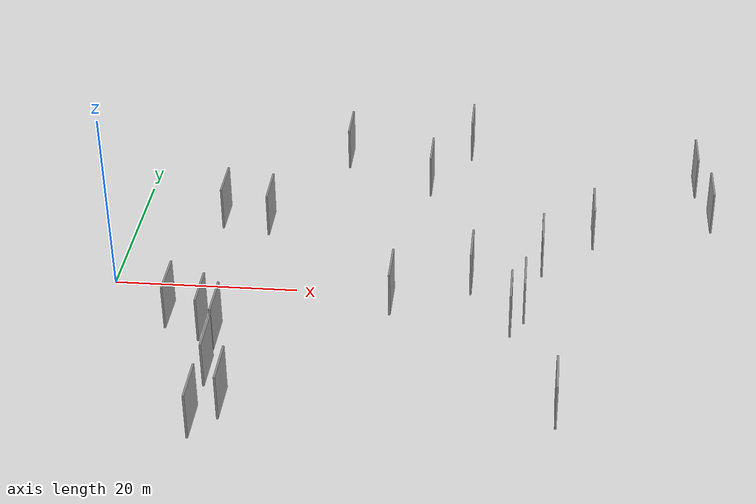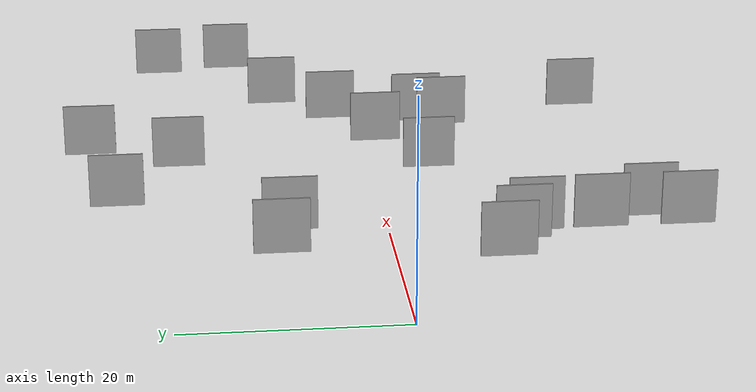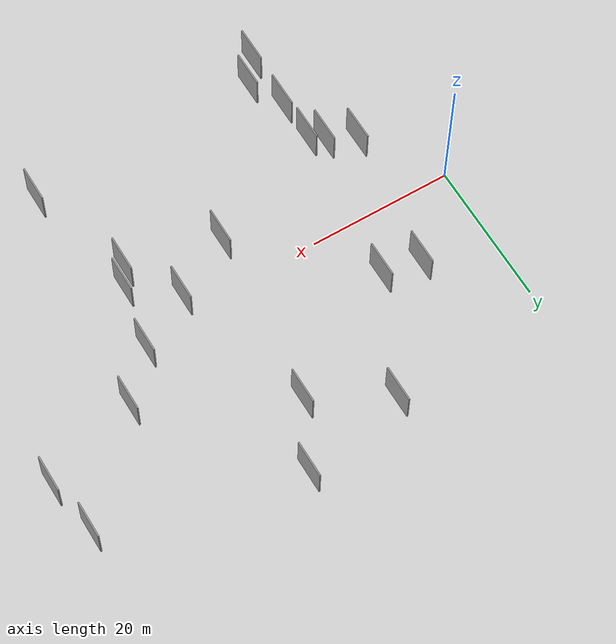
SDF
<sdf version="1.6">
 <world name="default">
  <scene>
   <sky><clouds><speed>12</speed></clouds></sky>
   <ambient>0.4 0.4 0.4 1</ambient>
   <background>0.7 0.7 0.7 1</background>
   <shadows>1</shadows>
  </scene>
  <gravity>0 0 -9.8066</gravity>
  <magnetic_field>6e-06 2.3e-05 -4.2e-05</magnetic_field>
  <physics default="0" name="default_physics" type="ode">
   <ode>
    <solver>
     <type>quick</type>
     <iters>10</iters>
     <sor>1.0</sor>
     <use_dynamic_moi_rescaling>0</use_dynamic_moi_rescaling>
    </solver>
    <constraints>
     <cfm>0</cfm>
     <erp>0.2</erp>
     <contact_max_correcting_vel>100</contact_max_correcting_vel>
     <contact_surface_layer>0.001</contact_surface_layer>
    </constraints>
   </ode>
   <max_step_size>0.004</max_step_size>
   <real_time_factor>1</real_time_factor>
   <real_time_update_rate>250</real_time_update_rate>
  </physics>
  <light name="sun" type="directional">
   <pose>0 0 10 0 0 0</pose>
   <diffuse>0.8 0.8 0.8 1</diffuse>
   <specular>0.2 0.2 0.2 1</specular>
   <attenuation>
    <range>1000</range>
    <constant>0.9</constant>
    <linear>0.01</linear>
    <quadratic>0.001</quadratic>
   </attenuation>
   <direction>-0.5 0.1 -0.9</direction>
  </light>
  <model name="grey_wall_1">
   <static>1</static>
   <pose>30.8269 -4.9778 2.5 0.000000 0.000000 1.570796</pose>
   <link name="link">
    <pose>0 0 2.50 0 0 0</pose>
    <collision name="collision"><geometry><box><size>5.00 0.2 5.00</size></box></geometry></collision>
    <visual name="visual">
     <cast_shadows>0</cast_shadows>
     <geometry><box><size>5.00 0.2 5.00</size></box></geometry>
     <material>
      <script>
       <uri>model://grey_wall/materials/scripts</uri>
       <uri>model://grey_wall/materials/textures</uri>
       <name>vrc/grey_wall</name>
      </script>
     </material>
    </visual>
   </link>
  </model>
  <model name="grey_wall_2">
   <static>1</static>
   <pose>11.8589 -10.9925 2.5 0.000000 0.000000 1.570796</pose>
   <link name="link">
    <pose>0 0 2.50 0 0 0</pose>
    <collision name="collision"><geometry><box><size>5.00 0.2 5.00</size></box></geometry></collision>
    <visual name="visual">
     <cast_shadows>0</cast_shadows>
     <geometry><box><size>5.00 0.2 5.00</size></box></geometry>
     <material>
      <script>
       <uri>model://grey_wall/materials/scripts</uri>
       <uri>model://grey_wall/materials/textures</uri>
       <name>vrc/grey_wall</name>
      </script>
     </material>
    </visual>
   </link>
  </model>
  <model name="grey_wall_3">
   <static>1</static>
   <pose>48.2119 -22.3808 2.5 0.000000 0.000000 1.570796</pose>
   <link name="link">
    <pose>0 0 2.50 0 0 0</pose>
    <collision name="collision"><geometry><box><size>5.00 0.2 5.00</size></box></geometry></collision>
    <visual name="visual">
     <cast_shadows>0</cast_shadows>
     <geometry><box><size>5.00 0.2 5.00</size></box></geometry>
     <material>
      <script>
       <uri>model://grey_wall/materials/scripts</uri>
       <uri>model://grey_wall/materials/textures</uri>
       <name>vrc/grey_wall</name>
      </script>
     </material>
    </visual>
   </link>
  </model>
  <model name="grey_wall_4">
   <static>1</static>
   <pose>63.8481 21.2241 2.5 0.000000 0.000000 1.570796</pose>
   <link name="link">
    <pose>0 0 2.50 0 0 0</pose>
    <collision name="collision"><geometry><box><size>5.00 0.2 5.00</size></box></geometry></collision>
    <visual name="visual">
     <cast_shadows>0</cast_shadows>
     <geometry><box><size>5.00 0.2 5.00</size></box></geometry>
     <material>
      <script>
       <uri>model://grey_wall/materials/scripts</uri>
       <uri>model://grey_wall/materials/textures</uri>
       <name>vrc/grey_wall</name>
      </script>
     </material>
    </visual>
   </link>
  </model>
  <model name="grey_wall_5">
   <static>1</static>
   <pose>10.6668 10.4937 2.5 0.000000 0.000000 1.570796</pose>
   <link name="link">
    <pose>0 0 2.50 0 0 0</pose>
    <collision name="collision"><geometry><box><size>5.00 0.2 5.00</size></box></geometry></collision>
    <visual name="visual">
     <cast_shadows>0</cast_shadows>
     <geometry><box><size>5.00 0.2 5.00</size></box></geometry>
     <material>
      <script>
       <uri>model://grey_wall/materials/scripts</uri>
       <uri>model://grey_wall/materials/textures</uri>
       <name>vrc/grey_wall</name>
      </script>
     </material>
    </visual>
   </link>
  </model>
  <model name="grey_wall_6">
   <static>1</static>
   <pose>33.3438 19.2492 2.5 0.000000 0.000000 1.570796</pose>
   <link name="link">
    <pose>0 0 2.50 0 0 0</pose>
    <collision name="collision"><geometry><box><size>5.00 0.2 5.00</size></box></geometry></collision>
    <visual name="visual">
     <cast_shadows>0</cast_shadows>
     <geometry><box><size>5.00 0.2 5.00</size></box></geometry>
     <material>
      <script>
       <uri>model://grey_wall/materials/scripts</uri>
       <uri>model://grey_wall/materials/textures</uri>
       <name>vrc/grey_wall</name>
      </script>
     </material>
    </visual>
   </link>
  </model>
  <model name="grey_wall_7">
   <static>1</static>
   <pose>15.9261 9.4686 2.5 0.000000 0.000000 1.570796</pose>
   <link name="link">
    <pose>0 0 2.50 0 0 0</pose>
    <collision name="collision"><geometry><box><size>5.00 0.2 5.00</size></box></geometry></collision>
    <visual name="visual">
     <cast_shadows>0</cast_shadows>
     <geometry><box><size>5.00 0.2 5.00</size></box></geometry>
     <material>
      <script>
       <uri>model://grey_wall/materials/scripts</uri>
       <uri>model://grey_wall/materials/textures</uri>
       <name>vrc/grey_wall</name>
      </script>
     </material>
    </visual>
   </link>
  </model>
  <model name="grey_wall_8">
   <static>1</static>
   <pose>39.0118 -0.5778 2.5 0.000000 0.000000 1.570796</pose>
   <link name="link">
    <pose>0 0 2.50 0 0 0</pose>
    <collision name="collision"><geometry><box><size>5.00 0.2 5.00</size></box></geometry></collision>
    <visual name="visual">
     <cast_shadows>0</cast_shadows>
     <geometry><box><size>5.00 0.2 5.00</size></box></geometry>
     <material>
      <script>
       <uri>model://grey_wall/materials/scripts</uri>
       <uri>model://grey_wall/materials/textures</uri>
       <name>vrc/grey_wall</name>
      </script>
     </material>
    </visual>
   </link>
  </model>
  <model name="grey_wall_9">
   <static>1</static>
   <pose>23.2957 25.0050 2.5 0.000000 0.000000 1.570796</pose>
   <link name="link">
    <pose>0 0 2.50 0 0 0</pose>
    <collision name="collision"><geometry><box><size>5.00 0.2 5.00</size></box></geometry></collision>
    <visual name="visual">
     <cast_shadows>0</cast_shadows>
     <geometry><box><size>5.00 0.2 5.00</size></box></geometry>
     <material>
      <script>
       <uri>model://grey_wall/materials/scripts</uri>
       <uri>model://grey_wall/materials/textures</uri>
       <name>vrc/grey_wall</name>
      </script>
     </material>
    </visual>
   </link>
  </model>
  <model name="grey_wall_10">
   <static>1</static>
   <pose>8.0486 -9.0642 2.5 0.000000 0.000000 1.570796</pose>
   <link name="link">
    <pose>0 0 2.50 0 0 0</pose>
    <collision name="collision"><geometry><box><size>5.00 0.2 5.00</size></box></geometry></collision>
    <visual name="visual">
     <cast_shadows>0</cast_shadows>
     <geometry><box><size>5.00 0.2 5.00</size></box></geometry>
     <material>
      <script>
       <uri>model://grey_wall/materials/scripts</uri>
       <uri>model://grey_wall/materials/textures</uri>
       <name>vrc/grey_wall</name>
      </script>
     </material>
    </visual>
   </link>
  </model>
  <model name="grey_wall_11">
   <static>1</static>
   <pose>37.6533 27.9439 2.5 0.000000 0.000000 1.570796</pose>
   <link name="link">
    <pose>0 0 2.50 0 0 0</pose>
    <collision name="collision"><geometry><box><size>5.00 0.2 5.00</size></box></geometry></collision>
    <visual name="visual">
     <cast_shadows>0</cast_shadows>
     <geometry><box><size>5.00 0.2 5.00</size></box></geometry>
     <material>
      <script>
       <uri>model://grey_wall/materials/scripts</uri>
       <uri>model://grey_wall/materials/textures</uri>
       <name>vrc/grey_wall</name>
      </script>
     </material>
    </visual>
   </link>
  </model>
  <model name="grey_wall_12">
   <static>1</static>
   <pose>13.8016 -18.4092 2.5 0.000000 0.000000 1.570796</pose>
   <link name="link">
    <pose>0 0 2.50 0 0 0</pose>
    <collision name="collision"><geometry><box><size>5.00 0.2 5.00</size></box></geometry></collision>
    <visual name="visual">
     <cast_shadows>0</cast_shadows>
     <geometry><box><size>5.00 0.2 5.00</size></box></geometry>
     <material>
      <script>
       <uri>model://grey_wall/materials/scripts</uri>
       <uri>model://grey_wall/materials/textures</uri>
       <name>vrc/grey_wall</name>
      </script>
     </material>
    </visual>
   </link>
  </model>
  <model name="grey_wall_13">
   <static>1</static>
   <pose>13.6324 -12.4716 2.5 0.000000 0.000000 1.570796</pose>
   <link name="link">
    <pose>0 0 2.50 0 0 0</pose>
    <collision name="collision"><geometry><box><size>5.00 0.2 5.00</size></box></geometry></collision>
    <visual name="visual">
     <cast_shadows>0</cast_shadows>
     <geometry><box><size>5.00 0.2 5.00</size></box></geometry>
     <material>
      <script>
       <uri>model://grey_wall/materials/scripts</uri>
       <uri>model://grey_wall/materials/textures</uri>
       <name>vrc/grey_wall</name>
      </script>
     </material>
    </visual>
   </link>
  </model>
  <model name="grey_wall_14">
   <static>1</static>
   <pose>51.9591 9.2337 2.5 0.000000 0.000000 1.570796</pose>
   <link name="link">
    <pose>0 0 2.50 0 0 0</pose>
    <collision name="collision"><geometry><box><size>5.00 0.2 5.00</size></box></geometry></collision>
    <visual name="visual">
     <cast_shadows>0</cast_shadows>
     <geometry><box><size>5.00 0.2 5.00</size></box></geometry>
     <material>
      <script>
       <uri>model://grey_wall/materials/scripts</uri>
       <uri>model://grey_wall/materials/textures</uri>
       <name>vrc/grey_wall</name>
      </script>
     </material>
    </visual>
   </link>
  </model>
  <model name="grey_wall_15">
   <static>1</static>
   <pose>13.7365 -26.3985 2.5 0.000000 0.000000 1.570796</pose>
   <link name="link">
    <pose>0 0 2.50 0 0 0</pose>
    <collision name="collision"><geometry><box><size>5.00 0.2 5.00</size></box></geometry></collision>
    <visual name="visual">
     <cast_shadows>0</cast_shadows>
     <geometry><box><size>5.00 0.2 5.00</size></box></geometry>
     <material>
      <script>
       <uri>model://grey_wall/materials/scripts</uri>
       <uri>model://grey_wall/materials/textures</uri>
       <name>vrc/grey_wall</name>
      </script>
     </material>
    </visual>
   </link>
  </model>
  <model name="grey_wall_16">
   <static>1</static>
   <pose>65.1398 13.6905 2.5 0.000000 0.000000 1.570796</pose>
   <link name="link">
    <pose>0 0 2.50 0 0 0</pose>
    <collision name="collision"><geometry><box><size>5.00 0.2 5.00</size></box></geometry></collision>
    <visual name="visual">
     <cast_shadows>0</cast_shadows>
     <geometry><box><size>5.00 0.2 5.00</size></box></geometry>
     <material>
      <script>
       <uri>model://grey_wall/materials/scripts</uri>
       <uri>model://grey_wall/materials/textures</uri>
       <name>vrc/grey_wall</name>
      </script>
     </material>
    </visual>
   </link>
  </model>
  <model name="grey_wall_17">
   <static>1</static>
   <pose>43.3980 -7.8608 2.5 0.000000 0.000000 1.570796</pose>
   <link name="link">
    <pose>0 0 2.50 0 0 0</pose>
    <collision name="collision"><geometry><box><size>5.00 0.2 5.00</size></box></geometry></collision>
    <visual name="visual">
     <cast_shadows>0</cast_shadows>
     <geometry><box><size>5.00 0.2 5.00</size></box></geometry>
     <material>
      <script>
       <uri>model://grey_wall/materials/scripts</uri>
       <uri>model://grey_wall/materials/textures</uri>
       <name>vrc/grey_wall</name>
      </script>
     </material>
    </visual>
   </link>
  </model>
  <model name="grey_wall_18">
   <static>1</static>
   <pose>44.7562 -5.3839 2.5 0.000000 0.000000 1.570796</pose>
   <link name="link">
    <pose>0 0 2.50 0 0 0</pose>
    <collision name="collision"><geometry><box><size>5.00 0.2 5.00</size></box></geometry></collision>
    <visual name="visual">
     <cast_shadows>0</cast_shadows>
     <geometry><box><size>5.00 0.2 5.00</size></box></geometry>
     <material>
      <script>
       <uri>model://grey_wall/materials/scripts</uri>
       <uri>model://grey_wall/materials/textures</uri>
       <name>vrc/grey_wall</name>
      </script>
     </material>
    </visual>
   </link>
  </model>
  <model name="grey_wall_19">
   <static>1</static>
   <pose>46.4545 3.4149 2.5 0.000000 0.000000 1.570796</pose>
   <link name="link">
    <pose>0 0 2.50 0 0 0</pose>
    <collision name="collision"><geometry><box><size>5.00 0.2 5.00</size></box></geometry></collision>
    <visual name="visual">
     <cast_shadows>0</cast_shadows>
     <geometry><box><size>5.00 0.2 5.00</size></box></geometry>
     <material>
      <script>
       <uri>model://grey_wall/materials/scripts</uri>
       <uri>model://grey_wall/materials/textures</uri>
       <name>vrc/grey_wall</name>
      </script>
     </material>
    </visual>
   </link>
  </model>
  <model name="grey_wall_20">
   <static>1</static>
   <pose>16.0897 -23.3791 2.5 0.000000 0.000000 1.570796</pose>
   <link name="link">
    <pose>0 0 2.50 0 0 0</pose>
    <collision name="collision"><geometry><box><size>5.00 0.2 5.00</size></box></geometry></collision>
    <visual name="visual">
     <cast_shadows>0</cast_shadows>
     <geometry><box><size>5.00 0.2 5.00</size></box></geometry>
     <material>
      <script>
       <uri>model://grey_wall/materials/scripts</uri>
       <uri>model://grey_wall/materials/textures</uri>
       <name>vrc/grey_wall</name>
      </script>
     </material>
    </visual>
   </link>
  </model>
 </world>
</sdf>
